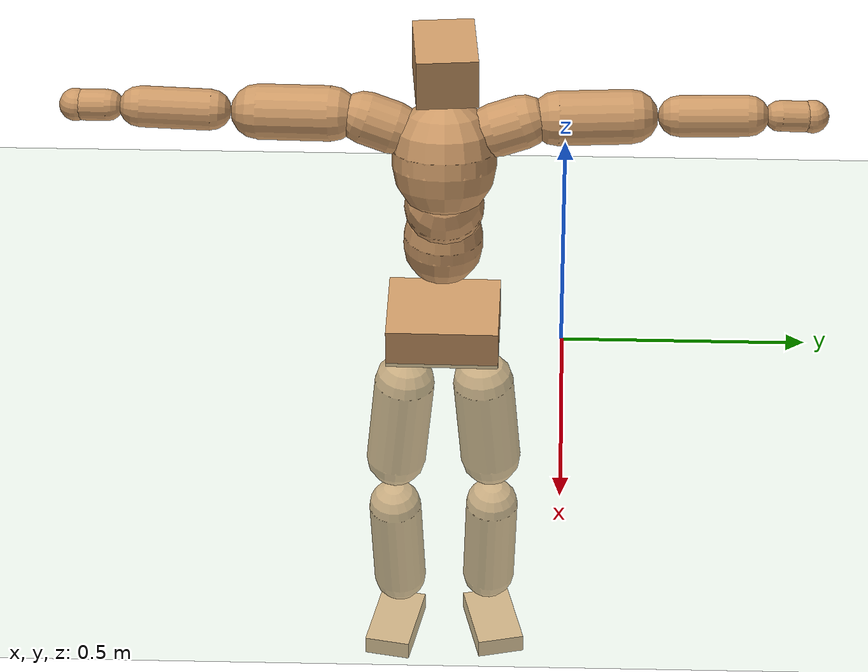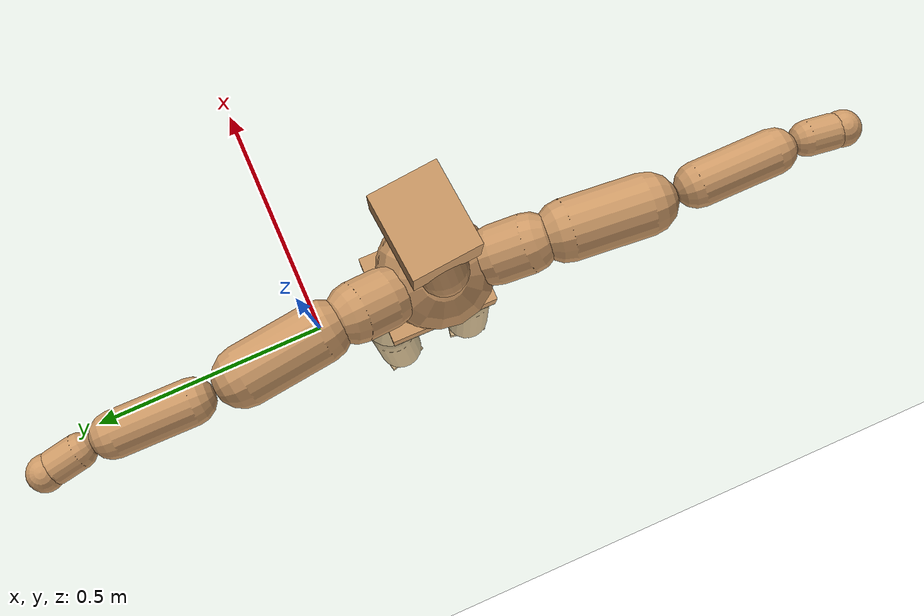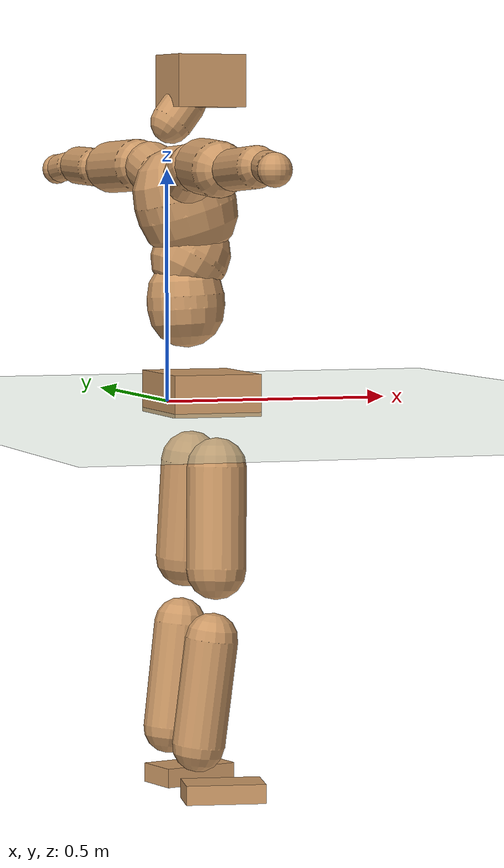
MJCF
<mujoco model="humanoid">
  <compiler coordinate="local" angle="radian"/>
  <default>
    <joint damping="0.0" armature="0.01" stiffness="0.0" limited="true"/>
    <geom conaffinity="1" condim="3" contype="7" margin="0.001" rgba="0.8 0.6 .4 1"/>
  </default>
  <asset>
    <texture type="skybox" builtin="gradient" rgb1=".4 .5 .6" rgb2="0 0 0" width="100" height="100"/>
    <texture builtin="flat" height="1278" mark="cross" markrgb="1 1 1" name="texgeom" random="0.01" rgb1="0.8 0.6 0.4" rgb2="0.8 0.6 0.4" type="cube" width="127"/>
    <texture builtin="checker" height="100" name="texplane" rgb1="0 0 0" rgb2="0.8 0.8 0.8" type="2d" width="100"/>
    <material name="MatPlane" reflectance="0.5" shininess="1" specular="1" texrepeat="60 60" texture="texplane"/>
    <material name="geom" texture="texgeom" texuniform="true"/>
  </asset>
  <worldbody>
    <light cutoff="100" diffuse="1 1 1" dir="-0 0 -1.3" directional="true" exponent="1" pos="0 0 1.3" specular=".1 .1 .1"/>
    <geom conaffinity="1" condim="3" name="floor" pos="0 0 0" rgba="0.8 0.9 0.8 1" size="100 100 .2" type="plane" material="MatPlane"/>
    <body name="Pelvis" pos="-0 -0.2455 0.0458">
      <freejoint name="Pelvis"/>
      <geom type="box" contype="1" conaffinity="1" density="500" pos="-0.0047 0.0001 -0.0126" size="0.0939 0.1157 0.0439" quat="1.0000 0.0000 0.0000 -0.0058" name="Pelvis"/>
      <body name="L_Hip" pos="0.0023 0.0779 -0.0928">
        <joint name="L_Hip_x" type="hinge" pos="0 0 0" axis="1 0 0" stiffness="800" damping="80" armature="0.02" range="-180.0000 180.0000"/>
        <joint name="L_Hip_y" type="hinge" pos="0 0 0" axis="0 1 0" stiffness="800" damping="80" armature="0.02" range="-180.0000 180.0000"/>
        <joint name="L_Hip_z" type="hinge" pos="0 0 0" axis="0 0 1" stiffness="800" damping="80" armature="0.02" range="-180.0000 180.0000"/>
        <geom type="capsule" contype="1" conaffinity="1" density="500" fromto="-0.0024 0.0053 -0.0688 -0.0096 0.0212 -0.2753" size="0.0634" name="L_Hip"/>
        <body name="L_Knee" pos="-0.012 0.0265 -0.3441">
          <joint name="L_Knee_x" type="hinge" pos="0 0 0" axis="1 0 0" stiffness="800" damping="80" armature="0.02" range="-180.0000 180.0000"/>
          <joint name="L_Knee_y" type="hinge" pos="0 0 0" axis="0 1 0" stiffness="800" damping="80" armature="0.02" range="-180.0000 180.0000"/>
          <joint name="L_Knee_z" type="hinge" pos="0 0 0" axis="0 0 1" stiffness="800" damping="80" armature="0.02" range="-180.0000 180.0000"/>
          <geom type="capsule" contype="1" conaffinity="1" density="500" fromto="-0.0089 -0.0023 -0.0737 -0.0355 -0.0093 -0.2949" size="0.055" name="L_Knee"/>
          <body name="L_Ankle" pos="-0.0443 -0.0116 -0.3686">
            <joint name="L_Ankle_x" type="hinge" pos="0 0 0" axis="1 0 0" stiffness="800" damping="80" armature="0.02" range="-180.0000 180.0000"/>
            <joint name="L_Ankle_y" type="hinge" pos="0 0 0" axis="0 1 0" stiffness="800" damping="80" armature="0.02" range="-180.0000 180.0000"/>
            <joint name="L_Ankle_z" type="hinge" pos="0 0 0" axis="0 0 1" stiffness="800" damping="80" armature="0.02" range="-180.0000 180.0000"/>
            <geom type="box" contype="1" conaffinity="1" density="500" pos="0.0578 0.0136 -0.0276" size="0.0823 0.0491 0.0202" quat="0.9934 0.0000 0.0000 0.1149" name="L_Ankle"/>
            <body name="L_Toe" pos="0.1155 0.0271 -0.0552">
              <joint name="L_Toe_x" type="hinge" pos="0 0 0" axis="1 0 0" stiffness="500" damping="50" armature="0.02" range="-180.0000 180.0000"/>
              <joint name="L_Toe_y" type="hinge" pos="0 0 0" axis="0 1 0" stiffness="500" damping="50" armature="0.02" range="-180.0000 180.0000"/>
              <joint name="L_Toe_z" type="hinge" pos="0 0 0" axis="0 0 1" stiffness="500" damping="50" armature="0.02" range="-180.0000 180.0000"/>
              <geom type="box" contype="1" conaffinity="1" density="500" pos="0.0000 0.0000 0.0278" size="0.001 0.0024 0.001" quat="0.9926 0.0000 0.0000 0.1211" name="L_Toe"/>
            </body>
          </body>
        </body>
      </body>
      <body name="R_Hip" pos="0.0047 -0.0747 -0.0929">
        <joint name="R_Hip_x" type="hinge" pos="0 0 0" axis="1 0 0" stiffness="800" damping="80" armature="0.02" range="-180.0000 180.0000"/>
        <joint name="R_Hip_y" type="hinge" pos="0 0 0" axis="0 1 0" stiffness="800" damping="80" armature="0.02" range="-180.0000 180.0000"/>
        <joint name="R_Hip_z" type="hinge" pos="0 0 0" axis="0 0 1" stiffness="800" damping="80" armature="0.02" range="-180.0000 180.0000"/>
        <geom type="capsule" contype="1" conaffinity="1" density="500" fromto="-0.0026 -0.0066 -0.0704 -0.0105 -0.0264 -0.2816" size="0.0626" name="R_Hip"/>
        <body name="R_Knee" pos="-0.0132 -0.033 -0.352">
          <joint name="R_Knee_x" type="hinge" pos="0 0 0" axis="1 0 0" stiffness="800" damping="80" armature="0.02" range="-180.0000 180.0000"/>
          <joint name="R_Knee_y" type="hinge" pos="0 0 0" axis="0 1 0" stiffness="800" damping="80" armature="0.02" range="-180.0000 180.0000"/>
          <joint name="R_Knee_z" type="hinge" pos="0 0 0" axis="0 0 1" stiffness="800" damping="80" armature="0.02" range="-180.0000 180.0000"/>
          <geom type="capsule" contype="1" conaffinity="1" density="500" fromto="-0.0087 0.0026 -0.0742 -0.0348 0.0105 -0.2966" size="0.0553" name="R_Knee"/>
          <body name="R_Ankle" pos="-0.0435 0.0131 -0.3708">
            <joint name="R_Ankle_x" type="hinge" pos="0 0 0" axis="1 0 0" stiffness="800" damping="80" armature="0.02" range="-180.0000 180.0000"/>
            <joint name="R_Ankle_y" type="hinge" pos="0 0 0" axis="0 1 0" stiffness="800" damping="80" armature="0.02" range="-180.0000 180.0000"/>
            <joint name="R_Ankle_z" type="hinge" pos="0 0 0" axis="0 0 1" stiffness="800" damping="80" armature="0.02" range="-180.0000 180.0000"/>
            <geom type="box" contype="1" conaffinity="1" density="500" pos="0.0599 -0.0115 -0.0233" size="0.0836 0.0478 0.0203" quat="0.9955 0.0000 0.0000 -0.0945" name="R_Ankle"/>
            <body name="R_Toe" pos="0.1197 -0.0229 -0.0465">
              <joint name="R_Toe_x" type="hinge" pos="0 0 0" axis="1 0 0" stiffness="500" damping="50" armature="0.02" range="-180.0000 180.0000"/>
              <joint name="R_Toe_y" type="hinge" pos="0 0 0" axis="0 1 0" stiffness="500" damping="50" armature="0.02" range="-180.0000 180.0000"/>
              <joint name="R_Toe_z" type="hinge" pos="0 0 0" axis="0 0 1" stiffness="500" damping="50" armature="0.02" range="-180.0000 180.0000"/>
              <geom type="box" contype="1" conaffinity="1" density="500" pos="0.0000 0.0000 0.0256" size="0.001 0.0024 0.0011" quat="0.9964 0.0000 0.0000 -0.0851" name="R_Toe"/>
            </body>
          </body>
        </body>
      </body>
      <body name="Torso" pos="-0.035 -0.0029 0.11">
        <joint name="Torso_x" type="hinge" pos="0 0 0" axis="1 0 0" stiffness="1000" damping="100" armature="0.02" range="-180.0000 180.0000"/>
        <joint name="Torso_y" type="hinge" pos="0 0 0" axis="0 1 0" stiffness="1000" damping="100" armature="0.02" range="-180.0000 180.0000"/>
        <joint name="Torso_z" type="hinge" pos="0 0 0" axis="0 0 1" stiffness="1000" damping="100" armature="0.02" range="-180.0000 180.0000"/>
        <geom type="capsule" contype="1" conaffinity="1" density="500" fromto="-0.0044 0.0025 0.0820 -0.0029 0.0017 0.0547" size="0.0814" name="Torso"/>
        <body name="Spine" pos="-0.0073 0.0042 0.1367">
          <joint name="Spine_x" type="hinge" pos="0 0 0" axis="1 0 0" stiffness="1000" damping="100" armature="0.02" range="-180.0000 180.0000"/>
          <joint name="Spine_y" type="hinge" pos="0 0 0" axis="0 1 0" stiffness="1000" damping="100" armature="0.02" range="-180.0000 180.0000"/>
          <joint name="Spine_z" type="hinge" pos="0 0 0" axis="0 0 1" stiffness="1000" damping="100" armature="0.02" range="-180.0000 180.0000"/>
          <geom type="capsule" contype="1" conaffinity="1" density="500" fromto="0.0184 0.0007 0.0324 0.0123 0.0005 0.0216" size="0.0816" name="Spine"/>
          <body name="Chest" pos="0.0307 0.0012 0.0541">
            <joint name="Chest_x" type="hinge" pos="0 0 0" axis="1 0 0" stiffness="1000" damping="100" armature="0.02" range="-180.0000 180.0000"/>
            <joint name="Chest_y" type="hinge" pos="0 0 0" axis="0 1 0" stiffness="1000" damping="100" armature="0.02" range="-180.0000 180.0000"/>
            <joint name="Chest_z" type="hinge" pos="0 0 0" axis="0 0 1" stiffness="1000" damping="100" armature="0.02" range="-180.0000 180.0000"/>
            <geom type="capsule" contype="1" conaffinity="1" density="500" fromto="-0.0327 -0.0007 0.1005 -0.0218 -0.0005 0.0670" size="0.1057" name="Chest"/>
            <body name="Neck" pos="-0.0674 -0.0019 0.2382">
              <joint name="Neck_x" type="hinge" pos="0 0 0" axis="1 0 0" stiffness="500" damping="50" armature="0.02" range="-180.0000 180.0000"/>
              <joint name="Neck_y" type="hinge" pos="0 0 0" axis="0 1 0" stiffness="500" damping="50" armature="0.02" range="-180.0000 180.0000"/>
              <joint name="Neck_z" type="hinge" pos="0 0 0" axis="0 0 1" stiffness="500" damping="50" armature="0.02" range="-180.0000 180.0000"/>
              <geom type="capsule" contype="1" conaffinity="1" density="500" fromto="0.0100 0.0005 0.0131 0.0399 0.0020 0.0525" size="0.0443" name="Neck"/>
              <body name="Head" pos="0.0498 0.0025 0.0656">
                <joint name="Head_x" type="hinge" pos="0 0 0" axis="1 0 0" stiffness="500" damping="50" armature="0.02" range="-180.0000 180.0000"/>
                <joint name="Head_y" type="hinge" pos="0 0 0" axis="0 1 0" stiffness="500" damping="50" armature="0.02" range="-180.0000 180.0000"/>
                <joint name="Head_z" type="hinge" pos="0 0 0" axis="0 0 1" stiffness="500" damping="50" armature="0.02" range="-180.0000 180.0000"/>
                <geom type="box" contype="1" conaffinity="1" density="500" pos="0.0259 0.0022 0.0338" size="0.076 0.0618 0.0546" quat="0.9991 0.0000 0.0000 0.0428" name="Head"/>
              </body>
            </body>
            <body name="L_Thorax" pos="-0.0451 0.0823 0.1337">
              <joint name="L_Thorax_x" type="hinge" pos="0 0 0" axis="1 0 0" stiffness="500" damping="50" armature="0.02" range="-180.0000 180.0000"/>
              <joint name="L_Thorax_y" type="hinge" pos="0 0 0" axis="0 1 0" stiffness="500" damping="50" armature="0.02" range="-180.0000 180.0000"/>
              <joint name="L_Thorax_z" type="hinge" pos="0 0 0" axis="0 0 1" stiffness="500" damping="50" armature="0.02" range="-180.0000 180.0000"/>
              <geom type="capsule" contype="1" conaffinity="1" density="500" fromto="-0.0016 0.0188 0.0062 -0.0064 0.0752 0.0247" size="0.0553" name="L_Thorax"/>
              <body name="L_Shoulder" pos="-0.0081 0.094 0.0309">
                <joint name="L_Shoulder_x" type="hinge" pos="0 0 0" axis="1 0 0" stiffness="500" damping="50" armature="0.02" range="-720.0000 720.0000"/>
                <joint name="L_Shoulder_y" type="hinge" pos="0 0 0" axis="0 1 0" stiffness="500" damping="50" armature="0.02" range="-720.0000 720.0000"/>
                <joint name="L_Shoulder_z" type="hinge" pos="0 0 0" axis="0 0 1" stiffness="500" damping="50" armature="0.02" range="-720.0000 720.0000"/>
                <geom type="capsule" contype="1" conaffinity="1" density="500" fromto="-0.0054 0.0495 -0.0016 -0.0216 0.1979 -0.0063" size="0.0557" name="L_Shoulder"/>
                <body name="L_Elbow" pos="-0.027 0.2474 -0.0079">
                  <joint name="L_Elbow_x" type="hinge" pos="0 0 0" axis="1 0 0" stiffness="500" damping="50" armature="0.02" range="-720.0000 720.0000"/>
                  <joint name="L_Elbow_y" type="hinge" pos="0 0 0" axis="0 1 0" stiffness="500" damping="50" armature="0.02" range="-720.0000 720.0000"/>
                  <joint name="L_Elbow_z" type="hinge" pos="0 0 0" axis="0 0 1" stiffness="500" damping="50" armature="0.02" range="-720.0000 720.0000"/>
                  <geom type="capsule" contype="1" conaffinity="1" density="500" fromto="0.0005 0.0468 0.0014 0.0019 0.1873 0.0056" size="0.0421" name="L_Elbow"/>
                  <body name="L_Wrist" pos="0.0024 0.2341 0.0071">
                    <joint name="L_Wrist_x" type="hinge" pos="0 0 0" axis="1 0 0" stiffness="300" damping="30" armature="0.02" range="-180.0000 180.0000"/>
                    <joint name="L_Wrist_y" type="hinge" pos="0 0 0" axis="0 1 0" stiffness="300" damping="30" armature="0.02" range="-180.0000 180.0000"/>
                    <joint name="L_Wrist_z" type="hinge" pos="0 0 0" axis="0 0 1" stiffness="300" damping="30" armature="0.02" range="-180.0000 180.0000"/>
                    <geom type="capsule" contype="1" conaffinity="1" density="500" fromto="-0.0027 0.0165 -0.0020 -0.0106 0.0662 -0.0079" size="0.0317" name="L_Wrist"/>
                    <body name="L_Hand" pos="-0.0133 0.0827 -0.0098">
                      <joint name="L_Hand_x" type="hinge" pos="0 0 0" axis="1 0 0" stiffness="300" damping="30" armature="0.02" range="-180.0000 180.0000"/>
                      <joint name="L_Hand_y" type="hinge" pos="0 0 0" axis="0 1 0" stiffness="300" damping="30" armature="0.02" range="-180.0000 180.0000"/>
                      <joint name="L_Hand_z" type="hinge" pos="0 0 0" axis="0 0 1" stiffness="300" damping="30" armature="0.02" range="-180.0000 180.0000"/>
                      <geom type="sphere" contype="1" conaffinity="1" density="500" size="0.0335" pos="0.0000 0.0000 0.0000" name="L_Hand"/>
                    </body>
                  </body>
                </body>
              </body>
            </body>
            <body name="R_Thorax" pos="-0.0511 -0.0841 0.1309">
              <joint name="R_Thorax_x" type="hinge" pos="0 0 0" axis="1 0 0" stiffness="500" damping="50" armature="0.02" range="-180.0000 180.0000"/>
              <joint name="R_Thorax_y" type="hinge" pos="0 0 0" axis="0 1 0" stiffness="500" damping="50" armature="0.02" range="-180.0000 180.0000"/>
              <joint name="R_Thorax_z" type="hinge" pos="0 0 0" axis="0 0 1" stiffness="500" damping="50" armature="0.02" range="-180.0000 180.0000"/>
              <geom type="capsule" contype="1" conaffinity="1" density="500" fromto="-0.0022 -0.0194 0.0065 -0.0089 -0.0776 0.0259" size="0.054" name="R_Thorax"/>
              <body name="R_Shoulder" pos="-0.0111 -0.097 0.0324">
                <joint name="R_Shoulder_x" type="hinge" pos="0 0 0" axis="1 0 0" stiffness="500" damping="50" armature="0.02" range="-720.0000 720.0000"/>
                <joint name="R_Shoulder_y" type="hinge" pos="0 0 0" axis="0 1 0" stiffness="500" damping="50" armature="0.02" range="-720.0000 720.0000"/>
                <joint name="R_Shoulder_z" type="hinge" pos="0 0 0" axis="0 0 1" stiffness="500" damping="50" armature="0.02" range="-720.0000 720.0000"/>
                <geom type="capsule" contype="1" conaffinity="1" density="500" fromto="-0.0043 -0.0490 -0.0024 -0.0171 -0.1962 -0.0094" size="0.0567" name="R_Shoulder"/>
                <body name="R_Elbow" pos="-0.0213 -0.2452 -0.0118">
                  <joint name="R_Elbow_x" type="hinge" pos="0 0 0" axis="1 0 0" stiffness="500" damping="50" armature="0.02" range="-720.0000 720.0000"/>
                  <joint name="R_Elbow_y" type="hinge" pos="0 0 0" axis="0 1 0" stiffness="500" damping="50" armature="0.02" range="-720.0000 720.0000"/>
                  <joint name="R_Elbow_z" type="hinge" pos="0 0 0" axis="0 0 1" stiffness="500" damping="50" armature="0.02" range="-720.0000 720.0000"/>
                  <geom type="capsule" contype="1" conaffinity="1" density="500" fromto="-0.0002 -0.0479 0.0019 -0.0007 -0.1917 0.0076" size="0.042" name="R_Elbow"/>
                  <body name="R_Wrist" pos="-0.0009 -0.2397 0.0095">
                    <joint name="R_Wrist_x" type="hinge" pos="0 0 0" axis="1 0 0" stiffness="300" damping="30" armature="0.02" range="-180.0000 180.0000"/>
                    <joint name="R_Wrist_y" type="hinge" pos="0 0 0" axis="0 1 0" stiffness="300" damping="30" armature="0.02" range="-180.0000 180.0000"/>
                    <joint name="R_Wrist_z" type="hinge" pos="0 0 0" axis="0 0 1" stiffness="300" damping="30" armature="0.02" range="-180.0000 180.0000"/>
                    <geom type="capsule" contype="1" conaffinity="1" density="500" fromto="-0.0021 -0.0166 -0.0015 -0.0085 -0.0664 -0.0059" size="0.0322" name="R_Wrist"/>
                    <body name="R_Hand" pos="-0.0106 -0.083 -0.0073">
                      <joint name="R_Hand_x" type="hinge" pos="0 0 0" axis="1 0 0" stiffness="300" damping="30" armature="0.02" range="-180.0000 180.0000"/>
                      <joint name="R_Hand_y" type="hinge" pos="0 0 0" axis="0 1 0" stiffness="300" damping="30" armature="0.02" range="-180.0000 180.0000"/>
                      <joint name="R_Hand_z" type="hinge" pos="0 0 0" axis="0 0 1" stiffness="300" damping="30" armature="0.02" range="-180.0000 180.0000"/>
                      <geom type="sphere" contype="1" conaffinity="1" density="500" size="0.0334" pos="0.0000 0.0000 0.0000" name="R_Hand"/>
                    </body>
                  </body>
                </body>
              </body>
            </body>
          </body>
        </body>
      </body>
    </body>
  </worldbody>
  <actuator>
    <motor name="L_Hip_x" joint="L_Hip_x" gear="500"/>
    <motor name="L_Hip_y" joint="L_Hip_y" gear="500"/>
    <motor name="L_Hip_z" joint="L_Hip_z" gear="500"/>
    <motor name="L_Knee_x" joint="L_Knee_x" gear="500"/>
    <motor name="L_Knee_y" joint="L_Knee_y" gear="500"/>
    <motor name="L_Knee_z" joint="L_Knee_z" gear="500"/>
    <motor name="L_Ankle_x" joint="L_Ankle_x" gear="500"/>
    <motor name="L_Ankle_y" joint="L_Ankle_y" gear="500"/>
    <motor name="L_Ankle_z" joint="L_Ankle_z" gear="500"/>
    <motor name="L_Toe_x" joint="L_Toe_x" gear="500"/>
    <motor name="L_Toe_y" joint="L_Toe_y" gear="500"/>
    <motor name="L_Toe_z" joint="L_Toe_z" gear="500"/>
    <motor name="R_Hip_x" joint="R_Hip_x" gear="500"/>
    <motor name="R_Hip_y" joint="R_Hip_y" gear="500"/>
    <motor name="R_Hip_z" joint="R_Hip_z" gear="500"/>
    <motor name="R_Knee_x" joint="R_Knee_x" gear="500"/>
    <motor name="R_Knee_y" joint="R_Knee_y" gear="500"/>
    <motor name="R_Knee_z" joint="R_Knee_z" gear="500"/>
    <motor name="R_Ankle_x" joint="R_Ankle_x" gear="500"/>
    <motor name="R_Ankle_y" joint="R_Ankle_y" gear="500"/>
    <motor name="R_Ankle_z" joint="R_Ankle_z" gear="500"/>
    <motor name="R_Toe_x" joint="R_Toe_x" gear="500"/>
    <motor name="R_Toe_y" joint="R_Toe_y" gear="500"/>
    <motor name="R_Toe_z" joint="R_Toe_z" gear="500"/>
    <motor name="Torso_x" joint="Torso_x" gear="500"/>
    <motor name="Torso_y" joint="Torso_y" gear="500"/>
    <motor name="Torso_z" joint="Torso_z" gear="500"/>
    <motor name="Spine_x" joint="Spine_x" gear="500"/>
    <motor name="Spine_y" joint="Spine_y" gear="500"/>
    <motor name="Spine_z" joint="Spine_z" gear="500"/>
    <motor name="Chest_x" joint="Chest_x" gear="500"/>
    <motor name="Chest_y" joint="Chest_y" gear="500"/>
    <motor name="Chest_z" joint="Chest_z" gear="500"/>
    <motor name="Neck_x" joint="Neck_x" gear="500"/>
    <motor name="Neck_y" joint="Neck_y" gear="500"/>
    <motor name="Neck_z" joint="Neck_z" gear="500"/>
    <motor name="Head_x" joint="Head_x" gear="500"/>
    <motor name="Head_y" joint="Head_y" gear="500"/>
    <motor name="Head_z" joint="Head_z" gear="500"/>
    <motor name="L_Thorax_x" joint="L_Thorax_x" gear="500"/>
    <motor name="L_Thorax_y" joint="L_Thorax_y" gear="500"/>
    <motor name="L_Thorax_z" joint="L_Thorax_z" gear="500"/>
    <motor name="L_Shoulder_x" joint="L_Shoulder_x" gear="500"/>
    <motor name="L_Shoulder_y" joint="L_Shoulder_y" gear="500"/>
    <motor name="L_Shoulder_z" joint="L_Shoulder_z" gear="500"/>
    <motor name="L_Elbow_x" joint="L_Elbow_x" gear="500"/>
    <motor name="L_Elbow_y" joint="L_Elbow_y" gear="500"/>
    <motor name="L_Elbow_z" joint="L_Elbow_z" gear="500"/>
    <motor name="L_Wrist_x" joint="L_Wrist_x" gear="500"/>
    <motor name="L_Wrist_y" joint="L_Wrist_y" gear="500"/>
    <motor name="L_Wrist_z" joint="L_Wrist_z" gear="500"/>
    <motor name="L_Hand_x" joint="L_Hand_x" gear="500"/>
    <motor name="L_Hand_y" joint="L_Hand_y" gear="500"/>
    <motor name="L_Hand_z" joint="L_Hand_z" gear="500"/>
    <motor name="R_Thorax_x" joint="R_Thorax_x" gear="500"/>
    <motor name="R_Thorax_y" joint="R_Thorax_y" gear="500"/>
    <motor name="R_Thorax_z" joint="R_Thorax_z" gear="500"/>
    <motor name="R_Shoulder_x" joint="R_Shoulder_x" gear="500"/>
    <motor name="R_Shoulder_y" joint="R_Shoulder_y" gear="500"/>
    <motor name="R_Shoulder_z" joint="R_Shoulder_z" gear="500"/>
    <motor name="R_Elbow_x" joint="R_Elbow_x" gear="500"/>
    <motor name="R_Elbow_y" joint="R_Elbow_y" gear="500"/>
    <motor name="R_Elbow_z" joint="R_Elbow_z" gear="500"/>
    <motor name="R_Wrist_x" joint="R_Wrist_x" gear="500"/>
    <motor name="R_Wrist_y" joint="R_Wrist_y" gear="500"/>
    <motor name="R_Wrist_z" joint="R_Wrist_z" gear="500"/>
    <motor name="R_Hand_x" joint="R_Hand_x" gear="500"/>
    <motor name="R_Hand_y" joint="R_Hand_y" gear="500"/>
    <motor name="R_Hand_z" joint="R_Hand_z" gear="500"/>
  </actuator>
  <contact>
    <exclude body1="Torso" body2="Chest"/>
    <exclude body1="Head" body2="Chest"/>
    <exclude body1="R_Knee" body2="R_Toe"/>
    <exclude body1="R_Knee" body2="L_Ankle"/>
    <exclude body1="R_Knee" body2="L_Toe"/>
    <exclude body1="L_Knee" body2="L_Toe"/>
    <exclude body1="L_Knee" body2="R_Ankle"/>
    <exclude body1="L_Knee" body2="R_Toe"/>
    <exclude body1="L_Shoulder" body2="Chest"/>
    <exclude body1="R_Shoulder" body2="Chest"/>
  </contact>
  <sensor/>
  <size njmax="700" nconmax="700"/>
</mujoco>
